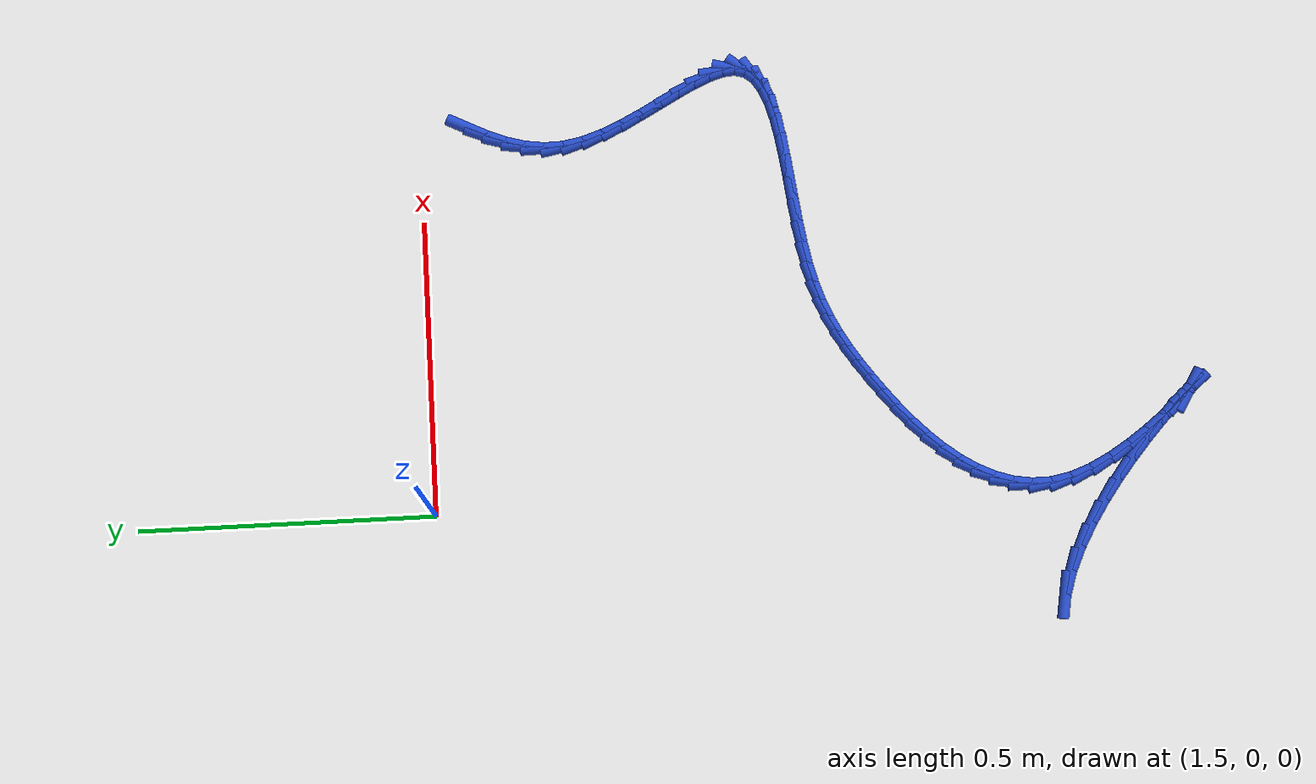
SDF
<sdf version="1.6">
 <world name="default">
  <model name="ground_plane">
   <static>1</static>
   <link name="link">
    <collision name="collision">
     <geometry><plane><normal>0 0 1</normal><size>100 100</size></plane></geometry>
     <surface><friction><ode><mu>100</mu><mu2>50</mu2></ode></friction></surface>
    </collision>
    <visual name="visual">
     <cast_shadows>0</cast_shadows>
     <geometry><plane><normal>0 0 1</normal><size>100 100</size></plane></geometry>
     <material>
      <script><uri>file://media/materials/scripts/gazebo.material</uri><name>Gazebo/WhiteGlow</name></script>
     </material>
    </visual>
   </link>
  </model>
  <model name="line">
   <link name="link_133">
    <pose>2.1586088132545305 -0.08176720726124855 0.01 0 1.57 1.1125124001218343</pose>
    <collision name="collision">
     <geometry><cylinder><radius>0.01</radius><length>0.08</length></cylinder></geometry>
    </collision>
    <visual name="visual">
     <material>
      <script><name>Gazebo/Blue</name><uri>file://media/materials/scripts/gazebo.material</uri></script>
     </material>
     <geometry><cylinder><radius>0.01</radius><length>0.08</length></cylinder></geometry>
    </visual>
   </link>
   <link name="link_134">
    <pose>2.143495816215772 -0.11240290690440904 0.01 0 1.57 1.1944689545229537</pose>
    <collision name="collision">
     <geometry><cylinder><radius>0.01</radius><length>0.08</length></cylinder></geometry>
    </collision>
    <visual name="visual">
     <material>
      <script><name>Gazebo/Blue</name><uri>file://media/materials/scripts/gazebo.material</uri></script>
     </material>
     <geometry><cylinder><radius>0.01</radius><length>0.08</length></cylinder></geometry>
    </visual>
   </link>
   <link name="link_135">
    <pose>2.1311460467011694 -0.143655454002688 0.01 0 1.57 1.3018231247613727</pose>
    <collision name="collision">
     <geometry><cylinder><radius>0.01</radius><length>0.08</length></cylinder></geometry>
    </collision>
    <visual name="visual">
     <material>
      <script><name>Gazebo/Blue</name><uri>file://media/materials/scripts/gazebo.material</uri></script>
     </material>
     <geometry><cylinder><radius>0.01</radius><length>0.08</length></cylinder></geometry>
    </visual>
   </link>
   <link name="link_136">
    <pose>2.122364819441889 -0.17551154530091334 0.01 0 1.57 1.4357869473683056</pose>
    <collision name="collision">
     <geometry><cylinder><radius>0.01</radius><length>0.08</length></cylinder></geometry>
    </collision>
    <visual name="visual">
     <material>
      <script><name>Gazebo/Blue</name><uri>file://media/materials/scripts/gazebo.material</uri></script>
     </material>
     <geometry><cylinder><radius>0.01</radius><length>0.08</length></cylinder></geometry>
    </visual>
   </link>
   <link name="link_137">
    <pose>2.1179574491690976 -0.20795787754391148 0.01 0 1.57 -1.5474293670320844</pose>
    <collision name="collision">
     <geometry><cylinder><radius>0.01</radius><length>0.08</length></cylinder></geometry>
    </collision>
    <visual name="visual">
     <material>
      <script><name>Gazebo/Blue</name><uri>file://media/materials/scripts/gazebo.material</uri></script>
     </material>
     <geometry><cylinder><radius>0.01</radius><length>0.08</length></cylinder></geometry>
    </visual>
   </link>
   <link name="link_138">
    <pose>2.118729243033594 -0.2409811461643205 0.01 0 1.57 -1.3827547901613573</pose>
    <collision name="collision">
     <geometry><cylinder><radius>0.01</radius><length>0.08</length></cylinder></geometry>
    </collision>
    <visual name="visual">
     <material>
      <script><name>Gazebo/Blue</name><uri>file://media/materials/scripts/gazebo.material</uri></script>
     </material>
     <geometry><cylinder><radius>0.01</radius><length>0.08</length></cylinder></geometry>
    </visual>
   </link>
   <link name="link_139">
    <pose>2.125108050789517 -0.27450270723054193 0.01 0 1.57 -1.2546236873011374</pose>
    <collision name="collision">
     <geometry><cylinder><radius>0.01</radius><length>0.08</length></cylinder></geometry>
    </collision>
    <visual name="visual">
     <material>
      <script><name>Gazebo/Blue</name><uri>file://media/materials/scripts/gazebo.material</uri></script>
     </material>
     <geometry><cylinder><radius>0.01</radius><length>0.08</length></cylinder></geometry>
    </visual>
   </link>
   <link name="link_140">
    <pose>2.136133185192231 -0.30820355557944334 0.01 0 1.57 -1.1651004193951098</pose>
    <collision name="collision">
     <geometry><cylinder><radius>0.01</radius><length>0.08</length></cylinder></geometry>
    </collision>
    <visual name="visual">
     <material>
      <script><name>Gazebo/Blue</name><uri>file://media/materials/scripts/gazebo.material</uri></script>
     </material>
     <geometry><cylinder><radius>0.01</radius><length>0.08</length></cylinder></geometry>
    </visual>
   </link>
   <link name="link_141">
    <pose>2.1505247478291833 -0.3417094293356055 0.01 0 1.57 -1.1069113491916682</pose>
    <collision name="collision">
     <geometry><cylinder><radius>0.01</radius><length>0.08</length></cylinder></geometry>
    </collision>
    <visual name="visual">
     <material>
      <script><name>Gazebo/Blue</name><uri>file://media/materials/scripts/gazebo.material</uri></script>
     </material>
     <geometry><cylinder><radius>0.01</radius><length>0.08</length></cylinder></geometry>
    </visual>
   </link>
   <link name="link_142">
    <pose>2.167002840287817 -0.3746460666236055 0.01 0 1.57 -1.0754591080399472</pose>
    <collision name="collision">
     <geometry><cylinder><radius>0.01</radius><length>0.08</length></cylinder></geometry>
    </collision>
    <visual name="visual">
     <material>
      <script><name>Gazebo/Blue</name><uri>file://media/materials/scripts/gazebo.material</uri></script>
     </material>
     <geometry><cylinder><radius>0.01</radius><length>0.08</length></cylinder></geometry>
    </visual>
   </link>
   <link name="link_143">
    <pose>2.1842875641555786 -0.4066392055680251 0.01 0 1.57 -1.0694560934337285</pose>
    <collision name="collision">
     <geometry><cylinder><radius>0.01</radius><length>0.08</length></cylinder></geometry>
    </collision>
    <visual name="visual">
     <material>
      <script><name>Gazebo/Blue</name><uri>file://media/materials/scripts/gazebo.material</uri></script>
     </material>
     <geometry><cylinder><radius>0.01</radius><length>0.08</length></cylinder></geometry>
    </visual>
   </link>
   <link name="link_144">
    <pose>2.2010990210199117 -0.4373145842934414 0.01 0 1.57 -1.0916316313384098</pose>
    <collision name="collision">
     <geometry><cylinder><radius>0.01</radius><length>0.08</length></cylinder></geometry>
    </collision>
    <visual name="visual">
     <material>
      <script><name>Gazebo/Blue</name><uri>file://media/materials/scripts/gazebo.material</uri></script>
     </material>
     <geometry><cylinder><radius>0.01</radius><length>0.08</length></cylinder></geometry>
    </visual>
   </link>
   <link name="link_145">
    <pose>2.2161573124682623 -0.46629794092443616 0.01 0 1.57 -1.150647600934674</pose>
    <collision name="collision">
     <geometry><cylinder><radius>0.01</radius><length>0.08</length></cylinder></geometry>
    </collision>
    <visual name="visual">
     <material>
      <script><name>Gazebo/Blue</name><uri>file://media/materials/scripts/gazebo.material</uri></script>
     </material>
     <geometry><cylinder><radius>0.01</radius><length>0.08</length></cylinder></geometry>
    </visual>
   </link>
   <link name="link_146">
    <pose>2.2281825400880746 -0.4932150135855869 0.01 0 1.57 -1.2655552434818578</pose>
    <collision name="collision">
     <geometry><cylinder><radius>0.01</radius><length>0.08</length></cylinder></geometry>
    </collision>
    <visual name="visual">
     <material>
      <script><name>Gazebo/Blue</name><uri>file://media/materials/scripts/gazebo.material</uri></script>
     </material>
     <geometry><cylinder><radius>0.01</radius><length>0.08</length></cylinder></geometry>
    </visual>
   </link>
   <link name="link_147">
    <pose>2.2358948054667946 -0.5176915404014747 0.01 0 1.57 -1.4732657304914827</pose>
    <collision name="collision">
     <geometry><cylinder><radius>0.01</radius><length>0.08</length></cylinder></geometry>
    </collision>
    <visual name="visual">
     <material>
      <script><name>Gazebo/Blue</name><uri>file://media/materials/scripts/gazebo.material</uri></script>
     </material>
     <geometry><cylinder><radius>0.01</radius><length>0.08</length></cylinder></geometry>
    </visual>
   </link>
   <link name="link_148">
    <pose>2.2380142101918654 -0.5393532594966773 0.01 0 1.57 1.3199020346315502</pose>
    <collision name="collision">
     <geometry><cylinder><radius>0.01</radius><length>0.08</length></cylinder></geometry>
    </collision>
    <visual name="visual">
     <material>
      <script><name>Gazebo/Blue</name><uri>file://media/materials/scripts/gazebo.material</uri></script>
     </material>
     <geometry><cylinder><radius>0.01</radius><length>0.08</length></cylinder></geometry>
    </visual>
   </link>
   <link name="link_149">
    <pose>2.23327811082415 -0.5578323722296843 0.01 0 1.57 0.9038501922680504</pose>
    <collision name="collision">
     <geometry><cylinder><radius>0.01</radius><length>0.08</length></cylinder></geometry>
    </collision>
    <visual name="visual">
     <material>
      <script><name>Gazebo/Blue</name><uri>file://media/materials/scripts/gazebo.material</uri></script>
     </material>
     <geometry><cylinder><radius>0.01</radius><length>0.08</length></cylinder></geometry>
    </visual>
   </link>
   <link name="link_150">
    <pose>2.221274079067013 -0.573079546942728 0.01 0 1.57 0.5922842137399899</pose>
    <collision name="collision">
     <geometry><cylinder><radius>0.01</radius><length>0.08</length></cylinder></geometry>
    </collision>
    <visual name="visual">
     <material>
      <script><name>Gazebo/Blue</name><uri>file://media/materials/scripts/gazebo.material</uri></script>
     </material>
     <geometry><cylinder><radius>0.01</radius><length>0.08</length></cylinder></geometry>
    </visual>
   </link>
   <link name="link_151">
    <pose>2.202810864080626 -0.5855028711439051 0.01 0 1.57 0.39603164776176014</pose>
    <collision name="collision">
     <geometry><cylinder><radius>0.01</radius><length>0.08</length></cylinder></geometry>
    </collision>
    <visual name="visual">
     <material>
      <script><name>Gazebo/Blue</name><uri>file://media/materials/scripts/gazebo.material</uri></script>
     </material>
     <geometry><cylinder><radius>0.01</radius><length>0.08</length></cylinder></geometry>
    </visual>
   </link>
   <link name="link_152">
    <pose>2.1787917251447726 -0.5955458332077773 0.01 0 1.57 0.2755290432597505</pose>
    <collision name="collision">
     <geometry><cylinder><radius>0.01</radius><length>0.08</length></cylinder></geometry>
    </collision>
    <visual name="visual">
     <material>
      <script><name>Gazebo/Blue</name><uri>file://media/materials/scripts/gazebo.material</uri></script>
     </material>
     <geometry><cylinder><radius>0.01</radius><length>0.08</length></cylinder></geometry>
    </visual>
   </link>
   <link name="link_153">
    <pose>2.150119921539237 -0.6036519215089051 0.01 0 1.57 0.20120250172435003</pose>
    <collision name="collision">
     <geometry><cylinder><radius>0.01</radius><length>0.08</length></cylinder></geometry>
    </collision>
    <visual name="visual">
     <material>
      <script><name>Gazebo/Blue</name><uri>file://media/materials/scripts/gazebo.material</uri></script>
     </material>
     <geometry><cylinder><radius>0.01</radius><length>0.08</length></cylinder></geometry>
    </visual>
   </link>
   <link name="link_154">
    <pose>2.117698712543802 -0.6102646244218503 0.01 0 1.57 0.15644352190066943</pose>
    <collision name="collision">
     <geometry><cylinder><radius>0.01</radius><length>0.08</length></cylinder></geometry>
    </collision>
    <visual name="visual">
     <material>
      <script><name>Gazebo/Blue</name><uri>file://media/materials/scripts/gazebo.material</uri></script>
     </material>
     <geometry><cylinder><radius>0.01</radius><length>0.08</length></cylinder></geometry>
    </visual>
   </link>
   <link name="link_155">
    <pose>2.0824313574382547 -0.6158274303211737 0.01 0 1.57 0.13242034170998848</pose>
    <collision name="collision">
     <geometry><cylinder><radius>0.01</radius><length>0.08</length></cylinder></geometry>
    </collision>
    <visual name="visual">
     <material>
      <script><name>Gazebo/Blue</name><uri>file://media/materials/scripts/gazebo.material</uri></script>
     </material>
     <geometry><cylinder><radius>0.01</radius><length>0.08</length></cylinder></geometry>
    </visual>
   </link>
   <link name="link_156">
    <pose>2.0452211155023754 -0.6207838275814369 0.01 0 1.57 0.12467014532290148</pose>
    <collision name="collision">
     <geometry><cylinder><radius>0.01</radius><length>0.08</length></cylinder></geometry>
    </collision>
    <visual name="visual">
     <material>
      <script><name>Gazebo/Blue</name><uri>file://media/materials/scripts/gazebo.material</uri></script>
     </material>
     <geometry><cylinder><radius>0.01</radius><length>0.08</length></cylinder></geometry>
    </visual>
   </link>
   <link name="link_157">
    <pose>2.0069712460159503 -0.6255773045772007 0.01 0 1.57 0.13142207062049782</pose>
    <collision name="collision">
     <geometry><cylinder><radius>0.01</radius><length>0.08</length></cylinder></geometry>
    </collision>
    <visual name="visual">
     <material>
      <script><name>Gazebo/Blue</name><uri>file://media/materials/scripts/gazebo.material</uri></script>
     </material>
     <geometry><cylinder><radius>0.01</radius><length>0.08</length></cylinder></geometry>
    </visual>
   </link>
   <link name="link_158">
    <pose>1.9685850082587617 -0.6306513496830268 0.01 0 1.57 0.15292222922581178</pose>
    <collision name="collision">
     <geometry><cylinder><radius>0.01</radius><length>0.08</length></cylinder></geometry>
    </collision>
    <visual name="visual">
     <material>
      <script><name>Gazebo/Blue</name><uri>file://media/materials/scripts/gazebo.material</uri></script>
     </material>
     <geometry><cylinder><radius>0.01</radius><length>0.08</length></cylinder></geometry>
    </visual>
   </link>
   <link name="link_159">
    <pose>1.9309656615105957 -0.6364494512734762 0.01 0 1.57 0.19139191267077185</pose>
    <collision name="collision">
     <geometry><cylinder><radius>0.01</radius><length>0.08</length></cylinder></geometry>
    </collision>
    <visual name="visual">
     <material>
      <script><name>Gazebo/Blue</name><uri>file://media/materials/scripts/gazebo.material</uri></script>
     </material>
     <geometry><cylinder><radius>0.01</radius><length>0.08</length></cylinder></geometry>
    </visual>
   </link>
   <link name="link_160">
    <pose>1.8950164650512349 -0.64341509772311 0.01 0 1.57 0.25057294928188534</pose>
    <collision name="collision">
     <geometry><cylinder><radius>0.01</radius><length>0.08</length></cylinder></geometry>
    </collision>
    <visual name="visual">
     <material>
      <script><name>Gazebo/Blue</name><uri>file://media/materials/scripts/gazebo.material</uri></script>
     </material>
     <geometry><cylinder><radius>0.01</radius><length>0.08</length></cylinder></geometry>
    </visual>
   </link>
   <link name="link_161">
    <pose>1.8615838973351895 -0.6519722408556476 0.01 0 1.57 0.3222952244780761</pose>
    <collision name="collision">
     <geometry><cylinder><radius>0.01</radius><length>0.08</length></cylinder></geometry>
    </collision>
    <visual name="visual">
     <material>
      <script><name>Gazebo/Blue</name><uri>file://media/materials/scripts/gazebo.material</uri></script>
     </material>
     <geometry><cylinder><radius>0.01</radius><length>0.08</length></cylinder></geometry>
    </visual>
   </link>
   <link name="link_162">
    <pose>1.830730910652655 -0.6622752450298156 0.01 0 1.57 0.39521892291848265</pose>
    <collision name="collision">
     <geometry><cylinder><radius>0.01</radius><length>0.08</length></cylinder></geometry>
    </collision>
    <visual name="visual">
     <material>
      <script><name>Gazebo/Blue</name><uri>file://media/materials/scripts/gazebo.material</uri></script>
     </material>
     <geometry><cylinder><radius>0.01</radius><length>0.08</length></cylinder></geometry>
    </visual>
   </link>
   <link name="link_163">
    <pose>1.8019494039121409 -0.6742819925459822 0.01 0 1.57 0.46506790001050435</pose>
    <collision name="collision">
     <geometry><cylinder><radius>0.01</radius><length>0.08</length></cylinder></geometry>
    </collision>
    <visual name="visual">
     <material>
      <script><name>Gazebo/Blue</name><uri>file://media/materials/scripts/gazebo.material</uri></script>
     </material>
     <geometry><cylinder><radius>0.01</radius><length>0.08</length></cylinder></geometry>
    </visual>
   </link>
   <link name="link_164">
    <pose>1.7747183271388078 -0.6879459103885396 0.01 0 1.57 0.5277951132713631</pose>
    <collision name="collision">
     <geometry><cylinder><radius>0.01</radius><length>0.08</length></cylinder></geometry>
    </collision>
    <visual name="visual">
     <material>
      <script><name>Gazebo/Blue</name><uri>file://media/materials/scripts/gazebo.material</uri></script>
     </material>
     <geometry><cylinder><radius>0.01</radius><length>0.08</length></cylinder></geometry>
    </visual>
   </link>
   <link name="link_165">
    <pose>1.7485166303578155 -0.7032204255418815 0.01 0 1.57 0.5801376757280721</pose>
    <collision name="collision">
     <geometry><cylinder><radius>0.01</radius><length>0.08</length></cylinder></geometry>
    </collision>
    <visual name="visual">
     <material>
      <script><name>Gazebo/Blue</name><uri>file://media/materials/scripts/gazebo.material</uri></script>
     </material>
     <geometry><cylinder><radius>0.01</radius><length>0.08</length></cylinder></geometry>
    </visual>
   </link>
   <link name="link_166">
    <pose>1.7228232635943255 -0.7200589649903999 0.01 0 1.57 0.6201078028367388</pose>
    <collision name="collision">
     <geometry><cylinder><radius>0.01</radius><length>0.08</length></cylinder></geometry>
    </collision>
    <visual name="visual">
     <material>
      <script><name>Gazebo/Blue</name><uri>file://media/materials/scripts/gazebo.material</uri></script>
     </material>
     <geometry><cylinder><radius>0.01</radius><length>0.08</length></cylinder></geometry>
    </visual>
   </link>
   <link name="link_167">
    <pose>1.6971171768734974 -0.7384149557184889 0.01 0 1.57 0.6492043405427208</pose>
    <collision name="collision">
     <geometry><cylinder><radius>0.01</radius><length>0.08</length></cylinder></geometry>
    </collision>
    <visual name="visual">
     <material>
      <script><name>Gazebo/Blue</name><uri>file://media/materials/scripts/gazebo.material</uri></script>
     </material>
     <geometry><cylinder><radius>0.01</radius><length>0.08</length></cylinder></geometry>
    </visual>
   </link>
   <link name="link_168">
    <pose>1.670991455184755 -0.7582430637871731 0.01 0 1.57 0.6813210358922592</pose>
    <collision name="collision">
     <geometry><cylinder><radius>0.01</radius><length>0.08</length></cylinder></geometry>
    </collision>
    <visual name="visual">
     <material>
      <script><name>Gazebo/Blue</name><uri>file://media/materials/scripts/gazebo.material</uri></script>
     </material>
     <geometry><cylinder><radius>0.01</radius><length>0.08</length></cylinder></geometry>
    </visual>
   </link>
   <link name="link_169">
    <pose>1.6447685460862562 -0.7795058733930148 0.01 0 1.57 0.7224841920745999</pose>
    <collision name="collision">
     <geometry><cylinder><radius>0.01</radius><length>0.08</length></cylinder></geometry>
    </collision>
    <visual name="visual">
     <material>
      <script><name>Gazebo/Blue</name><uri>file://media/materials/scripts/gazebo.material</uri></script>
     </material>
     <geometry><cylinder><radius>0.01</radius><length>0.08</length></cylinder></geometry>
    </visual>
   </link>
   <link name="link_170">
    <pose>1.6190579229028368 -0.8021690847533544 0.01 0 1.57 0.7739037582370966</pose>
    <collision name="collision">
     <geometry><cylinder><radius>0.01</radius><length>0.08</length></cylinder></geometry>
    </collision>
    <visual name="visual">
     <material>
      <script><name>Gazebo/Blue</name><uri>file://media/materials/scripts/gazebo.material</uri></script>
     </material>
     <geometry><cylinder><radius>0.01</radius><length>0.08</length></cylinder></geometry>
    </visual>
   </link>
   <link name="link_171">
    <pose>1.5944697482843857 -0.8261984055690145 0.01 0 1.57 0.8373163335833935</pose>
    <collision name="collision">
     <geometry><cylinder><radius>0.01</radius><length>0.08</length></cylinder></geometry>
    </collision>
    <visual name="visual">
     <material>
      <script><name>Gazebo/Blue</name><uri>file://media/materials/scripts/gazebo.material</uri></script>
     </material>
     <geometry><cylinder><radius>0.01</radius><length>0.08</length></cylinder></geometry>
    </visual>
   </link>
   <link name="link_172">
    <pose>1.5716141848807894 -0.8515595435408166 0.01 0 1.57 0.914956352018995</pose>
    <collision name="collision">
     <geometry><cylinder><radius>0.01</radius><length>0.08</length></cylinder></geometry>
    </collision>
    <visual name="visual">
     <material>
      <script><name>Gazebo/Blue</name><uri>file://media/materials/scripts/gazebo.material</uri></script>
     </material>
     <geometry><cylinder><radius>0.01</radius><length>0.08</length></cylinder></geometry>
    </visual>
   </link>
   <link name="link_173">
    <pose>1.5511013953419392 -0.8782182063695811 0.01 0 1.57 1.0094032568224485</pose>
    <collision name="collision">
     <geometry><cylinder><radius>0.01</radius><length>0.08</length></cylinder></geometry>
    </collision>
    <visual name="visual">
     <material>
      <script><name>Gazebo/Blue</name><uri>file://media/materials/scripts/gazebo.material</uri></script>
     </material>
     <geometry><cylinder><radius>0.01</radius><length>0.08</length></cylinder></geometry>
    </visual>
   </link>
   <link name="link_174">
    <pose>1.5335415423177228 -0.9061401017561307 0.01 0 1.57 1.123155001270461</pose>
    <collision name="collision">
     <geometry><cylinder><radius>0.01</radius><length>0.08</length></cylinder></geometry>
    </collision>
    <visual name="visual">
     <material>
      <script><name>Gazebo/Blue</name><uri>file://media/materials/scripts/gazebo.material</uri></script>
     </material>
     <geometry><cylinder><radius>0.01</radius><length>0.08</length></cylinder></geometry>
    </visual>
   </link>
   <link name="link_175">
    <pose>1.5195447884580293 -0.9352909374012852 0.01 0 1.57 1.2577210253559523</pose>
    <collision name="collision">
     <geometry><cylinder><radius>0.01</radius><length>0.08</length></cylinder></geometry>
    </collision>
    <visual name="visual">
     <material>
      <script><name>Gazebo/Blue</name><uri>file://media/materials/scripts/gazebo.material</uri></script>
     </material>
     <geometry><cylinder><radius>0.01</radius><length>0.08</length></cylinder></geometry>
    </visual>
   </link>
   <link name="link_176">
    <pose>1.509721296412747 -0.9656364210058678 0.01 0 1.57 1.4121678872961172</pose>
    <collision name="collision">
     <geometry><cylinder><radius>0.01</radius><length>0.08</length></cylinder></geometry>
    </collision>
    <visual name="visual">
     <material>
      <script><name>Gazebo/Blue</name><uri>file://media/materials/scripts/gazebo.material</uri></script>
     </material>
     <geometry><cylinder><radius>0.01</radius><length>0.08</length></cylinder></geometry>
    </visual>
   </link>
   <link name="link_177">
    <pose>1.5046812288317648 -0.9971422602706972 0.01 0 1.57 -1.559963194940742</pose>
    <collision name="collision">
     <geometry><cylinder><radius>0.01</radius><length>0.08</length></cylinder></geometry>
    </collision>
    <visual name="visual">
     <material>
      <script><name>Gazebo/Blue</name><uri>file://media/materials/scripts/gazebo.material</uri></script>
     </material>
     <geometry><cylinder><radius>0.01</radius><length>0.08</length></cylinder></geometry>
    </visual>
   </link>
   <link name="link_178">
    <pose>1.505034748364972 -1.0297741628965975 0.01 0 1.57 -1.3844722970584684</pose>
    <collision name="collision">
     <geometry><cylinder><radius>0.01</radius><length>0.08</length></cylinder></geometry>
    </collision>
    <visual name="visual">
     <material>
      <script><name>Gazebo/Blue</name><uri>file://media/materials/scripts/gazebo.material</uri></script>
     </material>
     <geometry><cylinder><radius>0.01</radius><length>0.08</length></cylinder></geometry>
    </visual>
   </link>
   <link name="link_179">
    <pose>1.511392017662257 -1.0634978365843881 0.01 0 1.57 -1.2213308605337694</pose>
    <collision name="collision">
     <geometry><cylinder><radius>0.01</radius><length>0.08</length></cylinder></geometry>
    </collision>
    <visual name="visual">
     <material>
      <script><name>Gazebo/Blue</name><uri>file://media/materials/scripts/gazebo.material</uri></script>
     </material>
     <geometry><cylinder><radius>0.01</radius><length>0.08</length></cylinder></geometry>
    </visual>
   </link>
   <link name="link_180">
    <pose>1.52400464151262 -1.0981076962109468 0.01 0 1.57 -1.1012432756164252</pose>
    <collision name="collision">
     <geometry><cylinder><radius>0.01</radius><length>0.08</length></cylinder></geometry>
    </collision>
    <visual name="visual">
     <material>
      <script><name>Gazebo/Blue</name><uri>file://media/materials/scripts/gazebo.material</uri></script>
     </material>
     <geometry><cylinder><radius>0.01</radius><length>0.08</length></cylinder></geometry>
    </visual>
   </link>
   <link name="link_181">
    <pose>1.5415230207728754 -1.1326332180667318 0.01 0 1.57 -1.0156210042070666</pose>
    <collision name="collision">
     <geometry><cylinder><radius>0.01</radius><length>0.08</length></cylinder></geometry>
    </collision>
    <visual name="visual">
     <material>
      <script><name>Gazebo/Blue</name><uri>file://media/materials/scripts/gazebo.material</uri></script>
     </material>
     <geometry><cylinder><radius>0.01</radius><length>0.08</length></cylinder></geometry>
    </visual>
   </link>
   <link name="link_182">
    <pose>1.5621507642000017 -1.1658904337270124 0.01 0 1.57 -0.9518986095889235</pose>
    <collision name="collision">
     <geometry><cylinder><radius>0.01</radius><length>0.08</length></cylinder></geometry>
    </collision>
    <visual name="visual">
     <material>
      <script><name>Gazebo/Blue</name><uri>file://media/materials/scripts/gazebo.material</uri></script>
     </material>
     <geometry><cylinder><radius>0.01</radius><length>0.08</length></cylinder></geometry>
    </visual>
   </link>
   <link name="link_183">
    <pose>1.584091460756396 -1.1966953653106482 0.01 0 1.57 -0.9023189866903288</pose>
    <collision name="collision">
     <geometry><cylinder><radius>0.01</radius><length>0.08</length></cylinder></geometry>
    </collision>
    <visual name="visual">
     <material>
      <script><name>Gazebo/Blue</name><uri>file://media/materials/scripts/gazebo.material</uri></script>
     </material>
     <geometry><cylinder><radius>0.01</radius><length>0.08</length></cylinder></geometry>
    </visual>
   </link>
   <link name="link_184">
    <pose>1.6055486994044532 -1.2238640349364966 0.01 0 1.57 -0.8616138580445964</pose>
    <collision name="collision">
     <geometry><cylinder><radius>0.01</radius><length>0.08</length></cylinder></geometry>
    </collision>
    <visual name="visual">
     <material>
      <script><name>Gazebo/Blue</name><uri>file://media/materials/scripts/gazebo.material</uri></script>
     </material>
     <geometry><cylinder><radius>0.01</radius><length>0.08</length></cylinder></geometry>
    </visual>
   </link>
   <link name="link_185">
    <pose>1.6247260691065728 -1.2462124647234183 0.01 0 1.57 -0.824910436498432</pose>
    <collision name="collision">
     <geometry><cylinder><radius>0.01</radius><length>0.08</length></cylinder></geometry>
    </collision>
    <visual name="visual">
     <material>
      <script><name>Gazebo/Blue</name><uri>file://media/materials/scripts/gazebo.material</uri></script>
     </material>
     <geometry><cylinder><radius>0.01</radius><length>0.08</length></cylinder></geometry>
    </visual>
   </link>
   <link name="link_186">
    <pose>1.63982715882515 -1.2625566767902714 0.01 0 1.57 -0.781461031884594</pose>
    <collision name="collision">
     <geometry><cylinder><radius>0.01</radius><length>0.08</length></cylinder></geometry>
    </collision>
    <visual name="visual">
     <material>
      <script><name>Gazebo/Blue</name><uri>file://media/materials/scripts/gazebo.material</uri></script>
     </material>
     <geometry><cylinder><radius>0.01</radius><length>0.08</length></cylinder></geometry>
    </visual>
   </link>
   <link name="link_187">
    <pose>1.6490555575677337 -1.2717126932982272 0.01 0 1.57 -0.5359530518350732</pose>
    <collision name="collision">
     <geometry><cylinder><radius>0.01</radius><length>0.08</length></cylinder></geometry>
    </collision>
    <visual name="visual">
     <material>
      <script><name>Gazebo/Blue</name><uri>file://media/materials/scripts/gazebo.material</uri></script>
     </material>
     <geometry><cylinder><radius>0.01</radius><length>0.08</length></cylinder></geometry>
    </visual>
   </link>
   <link name="link_188">
    <pose>1.6510294761097237 -1.272885086079376 0.01 0 1.57 -0.8794348751608656</pose>
    <collision name="collision">
     <geometry><cylinder><radius>0.01</radius><length>0.08</length></cylinder></geometry>
    </collision>
    <visual name="visual">
     <material>
      <script><name>Gazebo/Blue</name><uri>file://media/materials/scripts/gazebo.material</uri></script>
     </material>
     <geometry><cylinder><radius>0.01</radius><length>0.08</length></cylinder></geometry>
    </visual>
   </link>
   <link name="link_189">
    <pose>1.646001910493102 -1.2668104142530305 0.01 0 1.57 -0.8207704098943082</pose>
    <collision name="collision">
     <geometry><cylinder><radius>0.01</radius><length>0.08</length></cylinder></geometry>
    </collision>
    <visual name="visual">
     <material>
      <script><name>Gazebo/Blue</name><uri>file://media/materials/scripts/gazebo.material</uri></script>
     </material>
     <geometry><cylinder><radius>0.01</radius><length>0.08</length></cylinder></geometry>
    </visual>
   </link>
   <link name="link_190">
    <pose>1.6346287120651417 -1.2546027600413308 0.01 0 1.57 -0.790168518131101</pose>
    <collision name="collision">
     <geometry><cylinder><radius>0.01</radius><length>0.08</length></cylinder></geometry>
    </collision>
    <visual name="visual">
     <material>
      <script><name>Gazebo/Blue</name><uri>file://media/materials/scripts/gazebo.material</uri></script>
     </material>
     <geometry><cylinder><radius>0.01</radius><length>0.08</length></cylinder></geometry>
    </visual>
   </link>
   <link name="link_191">
    <pose>1.6175657321731172 -1.2373762056664168 0.01 0 1.57 -0.7630660899468601</pose>
    <collision name="collision">
     <geometry><cylinder><radius>0.01</radius><length>0.08</length></cylinder></geometry>
    </collision>
    <visual name="visual">
     <material>
      <script><name>Gazebo/Blue</name><uri>file://media/materials/scripts/gazebo.material</uri></script>
     </material>
     <geometry><cylinder><radius>0.01</radius><length>0.08</length></cylinder></geometry>
    </visual>
   </link>
   <link name="link_192">
    <pose>1.595468822164303 -1.21624483335043 0.01 0 1.57 -0.7347861097351027</pose>
    <collision name="collision">
     <geometry><cylinder><radius>0.01</radius><length>0.08</length></cylinder></geometry>
    </collision>
    <visual name="visual">
     <material>
      <script><name>Gazebo/Blue</name><uri>file://media/materials/scripts/gazebo.material</uri></script>
     </material>
     <geometry><cylinder><radius>0.01</radius><length>0.08</length></cylinder></geometry>
    </visual>
   </link>
   <link name="link_193">
    <pose>1.5689938333859725 -1.1923227253155095 0.01 0 1.57 -0.7031684814087267</pose>
    <collision name="collision">
     <geometry><cylinder><radius>0.01</radius><length>0.08</length></cylinder></geometry>
    </collision>
    <visual name="visual">
     <material>
      <script><name>Gazebo/Blue</name><uri>file://media/materials/scripts/gazebo.material</uri></script>
     </material>
     <geometry><cylinder><radius>0.01</radius><length>0.08</length></cylinder></geometry>
    </visual>
   </link>
   <link name="link_194">
    <pose>1.538796617185399 -1.1667239637837952 0.01 0 1.57 -0.6664458942291492</pose>
    <collision name="collision">
     <geometry><cylinder><radius>0.01</radius><length>0.08</length></cylinder></geometry>
    </collision>
    <visual name="visual">
     <material>
      <script><name>Gazebo/Blue</name><uri>file://media/materials/scripts/gazebo.material</uri></script>
     </material>
     <geometry><cylinder><radius>0.01</radius><length>0.08</length></cylinder></geometry>
    </visual>
   </link>
   <link name="link_195">
    <pose>1.5055330249098584 -1.1405626309774288 0.01 0 1.57 -0.6226270470097491</pose>
    <collision name="collision">
     <geometry><cylinder><radius>0.01</radius><length>0.08</length></cylinder></geometry>
    </collision>
    <visual name="visual">
     <material>
      <script><name>Gazebo/Blue</name><uri>file://media/materials/scripts/gazebo.material</uri></script>
     </material>
     <geometry><cylinder><radius>0.01</radius><length>0.08</length></cylinder></geometry>
    </visual>
   </link>
   <link name="link_196">
    <pose>1.4698589079066224 -1.1149528091185492 0.01 0 1.57 -0.5691198914312477</pose>
    <collision name="collision">
     <geometry><cylinder><radius>0.01</radius><length>0.08</length></cylinder></geometry>
    </collision>
    <visual name="visual">
     <material>
      <script><name>Gazebo/Blue</name><uri>file://media/materials/scripts/gazebo.material</uri></script>
     </material>
     <geometry><cylinder><radius>0.01</radius><length>0.08</length></cylinder></geometry>
    </visual>
   </link>
   <link name="link_197">
    <pose>1.4324301175229668 -1.091008580429298 0.01 0 1.57 -0.5023322583309209</pose>
    <collision name="collision">
     <geometry><cylinder><radius>0.01</radius><length>0.08</length></cylinder></geometry>
    </collision>
    <visual name="visual">
     <material>
      <script><name>Gazebo/Blue</name><uri>file://media/materials/scripts/gazebo.material</uri></script>
     </material>
     <geometry><cylinder><radius>0.01</radius><length>0.08</length></cylinder></geometry>
    </visual>
   </link>
   <link name="link_198">
    <pose>1.3939025051061644 -1.0698440271318144 0.01 0 1.57 -0.417163939993737</pose>
    <collision name="collision">
     <geometry><cylinder><radius>0.01</radius><length>0.08</length></cylinder></geometry>
    </collision>
    <visual name="visual">
     <material>
      <script><name>Gazebo/Blue</name><uri>file://media/materials/scripts/gazebo.material</uri></script>
     </material>
     <geometry><cylinder><radius>0.01</radius><length>0.08</length></cylinder></geometry>
    </visual>
   </link>
   <link name="link_199">
    <pose>1.3549319220034899 -1.0525732314482392 0.01 0 1.57 -0.3064343785740035</pose>
    <collision name="collision">
     <geometry><cylinder><radius>0.01</radius><length>0.08</length></cylinder></geometry>
    </collision>
    <visual name="visual">
     <material>
      <script><name>Gazebo/Blue</name><uri>file://media/materials/scripts/gazebo.material</uri></script>
     </material>
     <geometry><cylinder><radius>0.01</radius><length>0.08</length></cylinder></geometry>
    </visual>
   </link>
   <link name="link_200">
    <pose>1.3161742195622164 -1.0403102756007125 0.01 0 1.57 -0.16068241162840094</pose>
    <collision name="collision">
     <geometry><cylinder><radius>0.01</radius><length>0.08</length></cylinder></geometry>
    </collision>
    <visual name="visual">
     <material>
      <script><name>Gazebo/Blue</name><uri>file://media/materials/scripts/gazebo.material</uri></script>
     </material>
     <geometry><cylinder><radius>0.01</radius><length>0.08</length></cylinder></geometry>
    </visual>
   </link>
  </model>
 </world>
</sdf>
